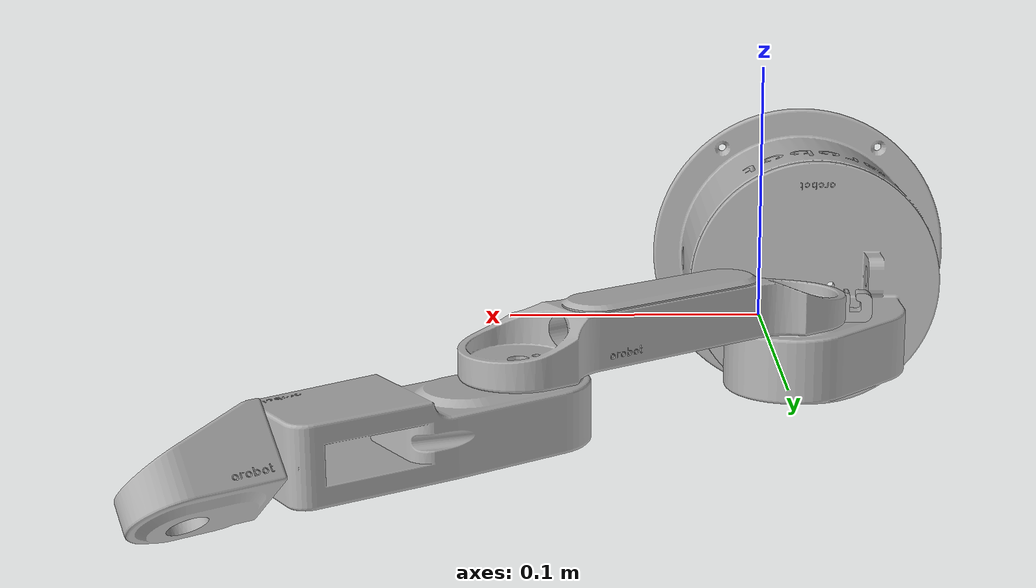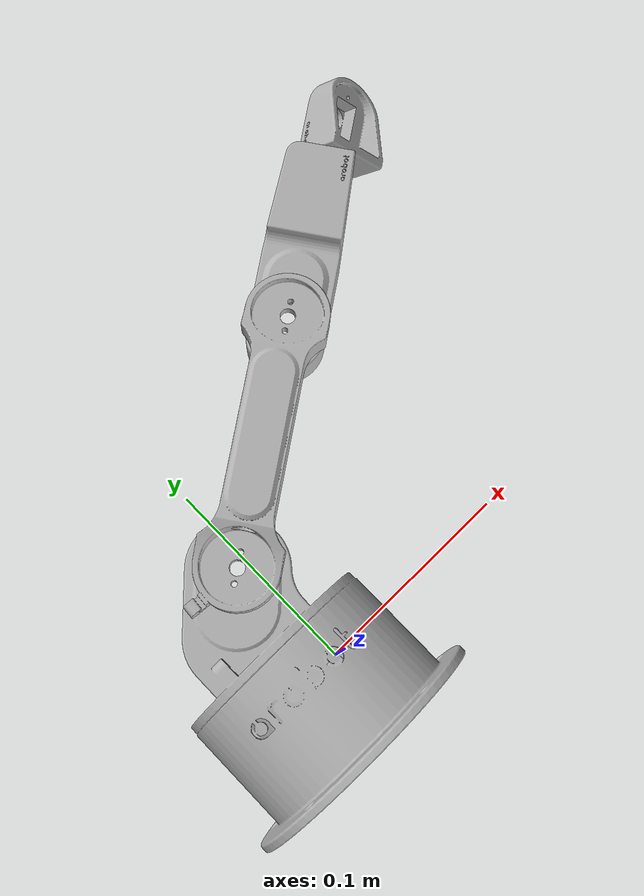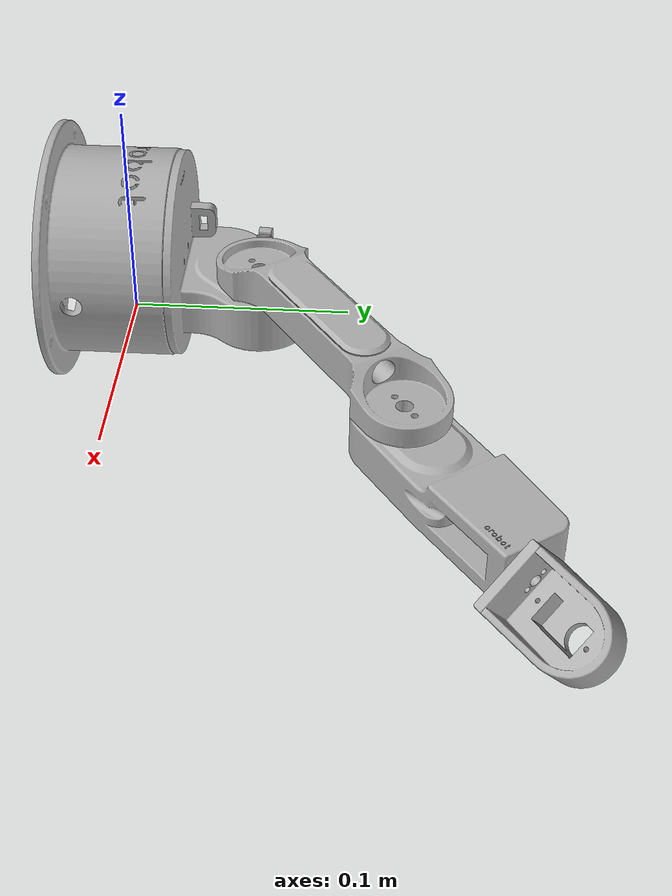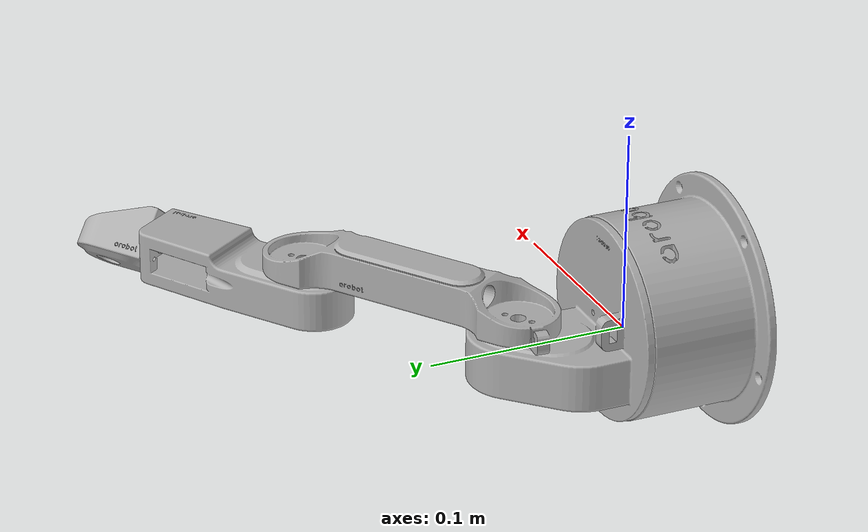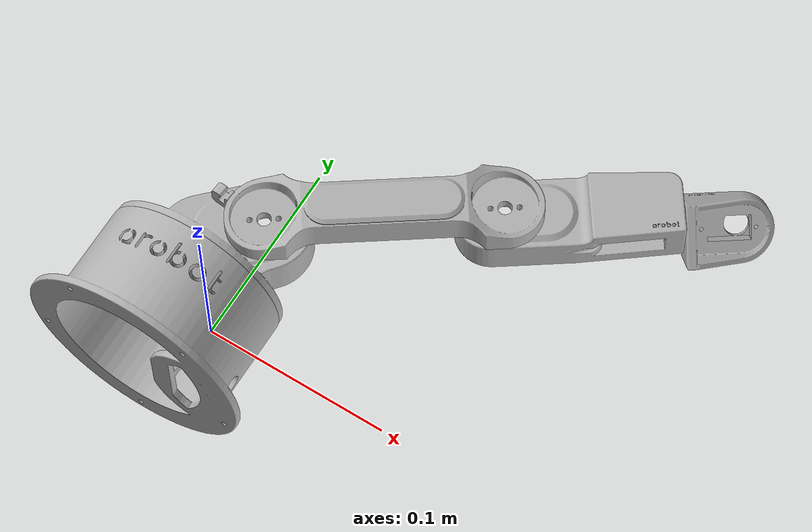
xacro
<?xml version="1.0" ?>
<robot name="Arobot" xmlns:xacro="http://www.ros.org/wiki/xacro">

<xacro:include filename="$(find Arobot_description)/urdf/materials.xacro" />
<xacro:include filename="$(find Arobot_description)/urdf/Arobot.trans" />
<xacro:include filename="$(find Arobot_description)/urdf/Arobot.gazebo" />
<link name="base_link">
  <inertial>
    <origin rpy="0 0 0" xyz="-0.01990240374144248 -0.0157829477466947 0.017303356869611805"/>
    <mass value="0.7310055412327093"/>
    <inertia ixx="0.000985" ixy="2.7e-05" ixz="-0.0" iyy="0.001604" iyz="4e-06" izz="0.001061"/>
  </inertial>
  <visual>
    <origin rpy="0 0 0" xyz="0 0 0"/>
    <geometry>
      <mesh filename="package://Arobot_description/meshes/base_link.stl" scale="0.001 0.001 0.001"/>
    </geometry>
    <material name="silver"/>
  </visual>
  <collision>
    <origin rpy="0 0 0" xyz="0 0 0"/>
    <geometry>
      <mesh filename="package://Arobot_description/meshes/base_link.stl" scale="0.001 0.001 0.001"/>
    </geometry>
  </collision>
</link>

<link name="NATHANwaist_1">
  <inertial>
    <origin rpy="0 0 0" xyz="0.002244162849833524 0.01877018847005935 -0.00758980344661425"/>
    <mass value="0.5674790951447787"/>
    <inertia ixx="0.000389" ixy="-5e-05" ixz="1.2e-05" iyy="0.000447" iyz="5.3e-05" izz="0.00049"/>
  </inertial>
  <visual>
    <origin rpy="0 0 0" xyz="0.019548 -0.017836 -0.017657"/>
    <geometry>
      <mesh filename="package://Arobot_description/meshes/NATHANwaist_1.stl" scale="0.001 0.001 0.001"/>
    </geometry>
    <material name="silver"/>
  </visual>
  <collision>
    <origin rpy="0 0 0" xyz="0.019548 -0.017836 -0.017657"/>
    <geometry>
      <mesh filename="package://Arobot_description/meshes/NATHANwaist_1.stl" scale="0.001 0.001 0.001"/>
    </geometry>
  </collision>
</link>

<link name="NATHANarm1_1">
  <inertial>
    <origin rpy="0 0 0" xyz="0.04849048815110291 0.03410586352233076 0.008283499394747746"/>
    <mass value="0.4435773528478237"/>
    <inertia ixx="0.000286" ixy="-0.00033" ixz="-1e-06" iyy="0.000536" iyz="-0.0" izz="0.000787"/>
  </inertial>
  <visual>
    <origin rpy="0 0 0" xyz="0.005629 -0.058113 -0.013708"/>
    <geometry>
      <mesh filename="package://Arobot_description/meshes/NATHANarm1_1.stl" scale="0.001 0.001 0.001"/>
    </geometry>
    <material name="silver"/>
  </visual>
  <collision>
    <origin rpy="0 0 0" xyz="0.005629 -0.058113 -0.013708"/>
    <geometry>
      <mesh filename="package://Arobot_description/meshes/NATHANarm1_1.stl" scale="0.001 0.001 0.001"/>
    </geometry>
  </collision>
</link>

<link name="NATHANarm02_1">
  <inertial>
    <origin rpy="0 0 0" xyz="0.031227914013118224 0.021821304286689686 -0.009778440934091331"/>
    <mass value="0.4469758277074998"/>
    <inertia ixx="0.000222" ixy="-0.000194" ixz="6e-06" iyy="0.000364" iyz="4e-06" izz="0.000527"/>
  </inertial>
  <visual>
    <origin rpy="0 0 0" xyz="-0.092669 -0.126942 -0.013708"/>
    <geometry>
      <mesh filename="package://Arobot_description/meshes/NATHANarm02_1.stl" scale="0.001 0.001 0.001"/>
    </geometry>
    <material name="silver"/>
  </visual>
  <collision>
    <origin rpy="0 0 0" xyz="-0.092669 -0.126942 -0.013708"/>
    <geometry>
      <mesh filename="package://Arobot_description/meshes/NATHANarm02_1.stl" scale="0.001 0.001 0.001"/>
    </geometry>
  </collision>
</link>

<link name="NATHANarm3_1">
  <inertial>
    <origin rpy="0 0 0" xyz="0.015052541891171806 0.010347518296290548 -0.007683736065540471"/>
    <mass value="0.1425119969472937"/>
    <inertia ixx="3e-05" ixy="-8e-06" ixz="5e-06" iyy="2.9e-05" iyz="-1e-06" izz="3.8e-05"/>
  </inertial>
  <visual>
    <origin rpy="0 0 0" xyz="-0.169228 -0.174079 -0.004208"/>
    <geometry>
      <mesh filename="package://Arobot_description/meshes/NATHANarm3_1.stl" scale="0.001 0.001 0.001"/>
    </geometry>
    <material name="silver"/>
  </visual>
  <collision>
    <origin rpy="0 0 0" xyz="-0.169228 -0.174079 -0.004208"/>
    <geometry>
      <mesh filename="package://Arobot_description/meshes/NATHANarm3_1.stl" scale="0.001 0.001 0.001"/>
    </geometry>
  </collision>
</link>

<joint name="Rev1" type="continuous">
  <origin rpy="0 0 0" xyz="-0.019548 0.017836 0.017657"/>
  <parent link="base_link"/>
  <child link="NATHANwaist_1"/>
  <axis xyz="0.0 1.0 0.0"/>
</joint>

<joint name="Rev2" type="revolute">
  <origin rpy="0 0 0" xyz="0.013919 0.040277 -0.003949"/>
  <parent link="NATHANwaist_1"/>
  <child link="NATHANarm1_1"/>
  <axis xyz="0.0 -0.0 1.0"/>
  <limit effort="100" lower="-0.698132" upper="2.356194" velocity="100"/>
</joint>

<joint name="Rev3" type="revolute">
  <origin rpy="0 0 0" xyz="0.098298 0.068829 0.0"/>
  <parent link="NATHANarm1_1"/>
  <child link="NATHANarm02_1"/>
  <axis xyz="-0.0 -0.0 -1.0"/>
  <limit effort="100" lower="-1.22173" upper="1.48353" velocity="100"/>
</joint>

<joint name="Rev4" type="continuous">
  <origin rpy="0 0 0" xyz="0.076559 0.047137 -0.0095"/>
  <parent link="NATHANarm02_1"/>
  <child link="NATHANarm3_1"/>
  <axis xyz="0.819152 0.573576 -0.0"/>
</joint>

</robot>

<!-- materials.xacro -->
<robot name="Arobot" xmlns:xacro="http://www.ros.org/wiki/xacro" >

<material name="silver">
  <color rgba="0.700 0.700 0.700 1.000"/>
</material>

</robot>

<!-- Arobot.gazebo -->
<robot name="Arobot" xmlns:xacro="http://www.ros.org/wiki/xacro" >

<xacro:property name="body_color" value="Gazebo/Silver" />

<gazebo>
  <plugin filename="libgazebo_ros_control.so" name="control"/>
</gazebo>
<gazebo reference="base_link">
  <material>${body_color}</material>
  <mu1>0.2</mu1>
  <mu2>0.2</mu2>
  <selfCollide>true</selfCollide>
  <gravity>true</gravity>
</gazebo>

<gazebo reference="NATHANwaist_1">
  <material>${body_color}</material>
  <mu1>0.2</mu1>
  <mu2>0.2</mu2>
  <selfCollide>true</selfCollide>
</gazebo>

<gazebo reference="NATHANarm1_1">
  <material>${body_color}</material>
  <mu1>0.2</mu1>
  <mu2>0.2</mu2>
  <selfCollide>true</selfCollide>
</gazebo>

<gazebo reference="NATHANarm02_1">
  <material>${body_color}</material>
  <mu1>0.2</mu1>
  <mu2>0.2</mu2>
  <selfCollide>true</selfCollide>
</gazebo>

<gazebo reference="NATHANarm3_1">
  <material>${body_color}</material>
  <mu1>0.2</mu1>
  <mu2>0.2</mu2>
  <selfCollide>true</selfCollide>
</gazebo>

</robot>
